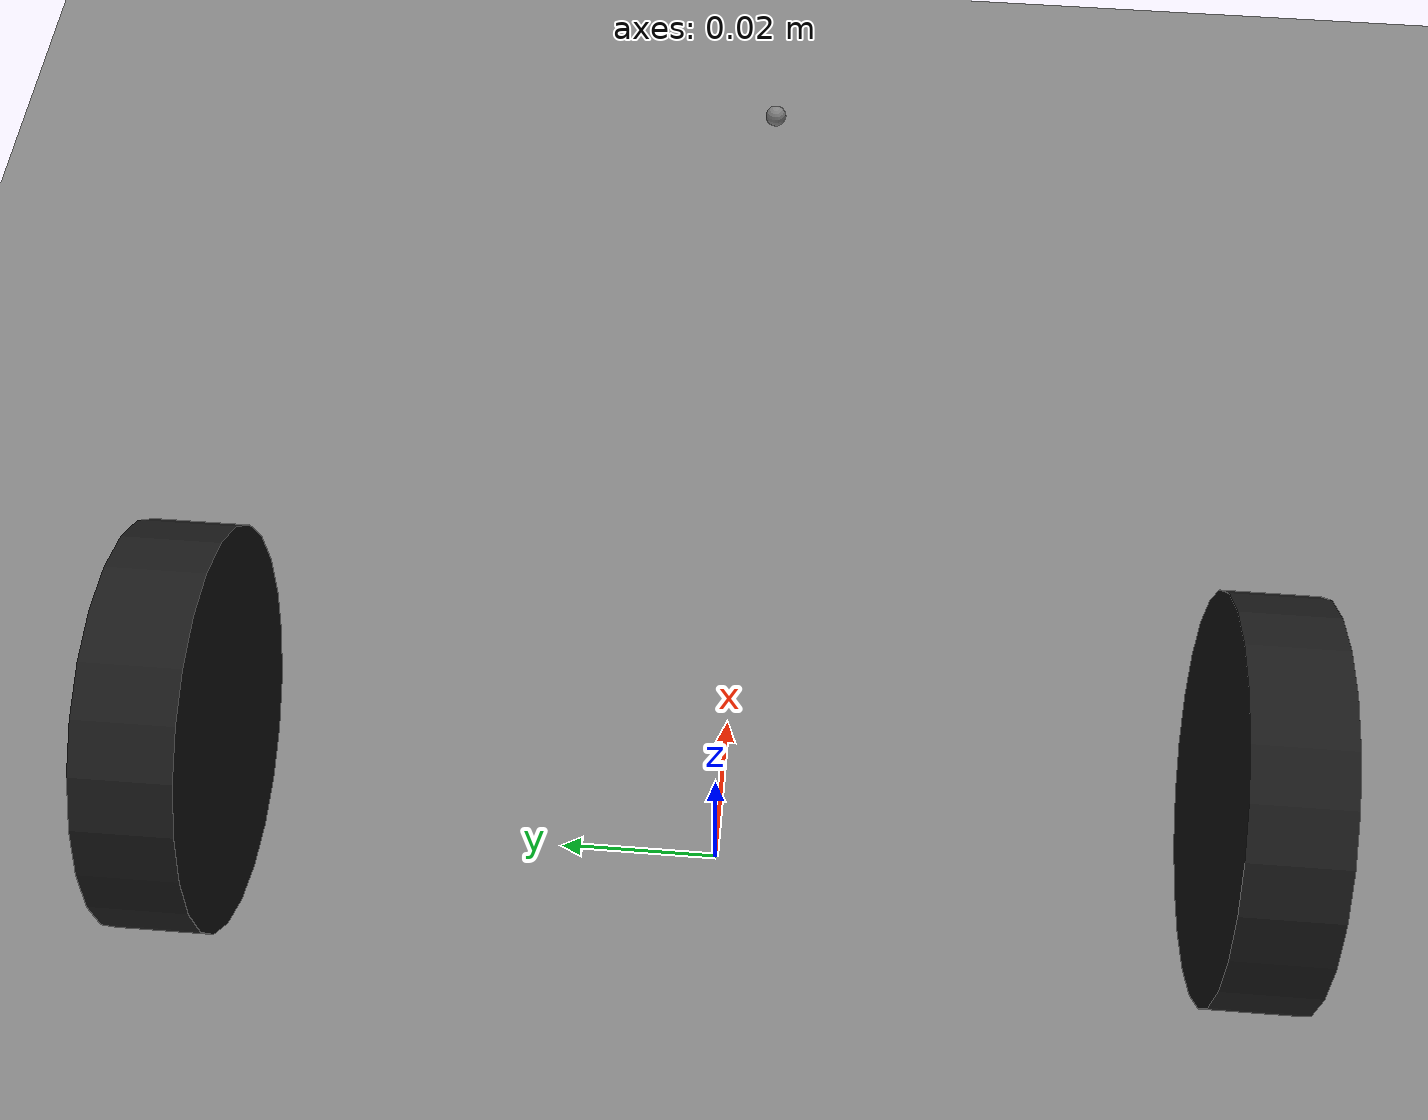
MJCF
<mujoco model="mr_stabs_mk2">
  <compiler angle="radian" autolimits="true"/>
  <option timestep="0.001" integrator="implicitfast" cone="elliptic"/>
  <default>
    <geom solref="0.02 1" solimp="0.9 0.95 0.001 0.5 2"/>
  </default>
  <asset>
    <mesh name="hull_0" file="collision/hull_0.obj"/>
    <mesh name="hull_1" file="collision/hull_1.obj"/>
    <mesh name="hull_2" file="collision/hull_2.obj"/>
    <mesh name="hull_3" file="collision/hull_3.obj"/>
    <mesh name="hull_4" file="collision/hull_4.obj"/>
    <mesh name="hull_5" file="collision/hull_5.obj"/>
    <mesh name="hull_6" file="collision/hull_6.obj"/>
    <mesh name="hull_7" file="collision/hull_7.obj"/>
    <mesh name="hull_8" file="collision/hull_8.obj"/>
    <mesh name="hull_9" file="collision/hull_9.obj"/>
    <mesh name="hull_10" file="collision/hull_10.obj"/>
    <mesh name="hull_11" file="collision/hull_11.obj"/>
    <mesh name="hull_12" file="collision/hull_12.obj"/>
    <mesh name="hull_13" file="collision/hull_13.obj"/>
    <mesh name="hull_14" file="collision/hull_14.obj"/>
    <mesh name="hull_15" file="collision/hull_15.obj"/>
  </asset>
  <worldbody>
    <geom name="floor" type="plane" size="3 3 0.1" contype="1"
          conaffinity="2" friction="0 0 0" condim="1"/>
    <body name="chassis" pos="0 0 0.025">
      <freejoint name="root"/>
      <inertial pos="0.0319413 4.3e-06 0.0008608" mass="0.4590101" fullinertia="0.000779756 0.000548137 0.00125669 4.14461e-08 -2.38195e-06 -9.33042e-08"/>
      <geom name="chassis_hull_0" type="mesh" mesh="hull_0" contype="2" conaffinity="1" condim="3" friction="0.3 0.001 0.0001" group="3"/>
      <geom name="chassis_hull_1" type="mesh" mesh="hull_1" contype="2" conaffinity="1" condim="3" friction="0.3 0.001 0.0001" group="3"/>
      <geom name="chassis_hull_2" type="mesh" mesh="hull_2" contype="2" conaffinity="1" condim="3" friction="0.3 0.001 0.0001" group="3"/>
      <geom name="chassis_hull_3" type="mesh" mesh="hull_3" contype="2" conaffinity="1" condim="3" friction="0.3 0.001 0.0001" group="3"/>
      <geom name="chassis_hull_4" type="mesh" mesh="hull_4" contype="2" conaffinity="1" condim="3" friction="0.3 0.001 0.0001" group="3"/>
      <geom name="chassis_hull_5" type="mesh" mesh="hull_5" contype="2" conaffinity="1" condim="3" friction="0.3 0.001 0.0001" group="3"/>
      <geom name="chassis_hull_6" type="mesh" mesh="hull_6" contype="2" conaffinity="1" condim="3" friction="0.3 0.001 0.0001" group="3"/>
      <geom name="chassis_hull_7" type="mesh" mesh="hull_7" contype="2" conaffinity="1" condim="3" friction="0.3 0.001 0.0001" group="3"/>
      <geom name="chassis_hull_8" type="mesh" mesh="hull_8" contype="2" conaffinity="1" condim="3" friction="0.3 0.001 0.0001" group="3"/>
      <geom name="chassis_hull_9" type="mesh" mesh="hull_9" contype="2" conaffinity="1" condim="3" friction="0.3 0.001 0.0001" group="3"/>
      <geom name="chassis_hull_10" type="mesh" mesh="hull_10" contype="2" conaffinity="1" condim="3" friction="0.3 0.001 0.0001" group="3"/>
      <geom name="chassis_hull_11" type="mesh" mesh="hull_11" contype="2" conaffinity="1" condim="3" friction="0.3 0.001 0.0001" group="3"/>
      <geom name="chassis_hull_12" type="mesh" mesh="hull_12" contype="2" conaffinity="1" condim="3" friction="0.3 0.001 0.0001" group="3"/>
      <geom name="chassis_hull_13" type="mesh" mesh="hull_13" contype="2" conaffinity="1" condim="3" friction="0.3 0.001 0.0001" group="3"/>
      <geom name="chassis_hull_14" type="mesh" mesh="hull_14" contype="2" conaffinity="1" condim="3" friction="0.3 0.001 0.0001" group="3"/>
      <geom name="chassis_hull_15" type="mesh" mesh="hull_15" contype="2" conaffinity="1" condim="3" friction="0.3 0.001 0.0001" group="3"/>
      <geom name="nose_skid" type="sphere" size="0.0015" pos="0.111471 0 -0.001631"
            contype="2" conaffinity="1" condim="4"
            friction="0.3 0.001 0.0001"/>
      <body name="wheel_left" pos="0 0.06526 0">
        <inertial pos="0 0 0" mass="0.0184449" diaginertia="2.33662e-06 4.25282e-06 2.33662e-06"/>
        <joint name="wheel_left" type="hinge" axis="0 1 0" armature="0.0004750068"
               damping="0.0001" frictionloss="0.002"/>
        <geom name="wheel_left_tread" type="cylinder" size="0.025 0.006"
              zaxis="0 1 0" contype="2" conaffinity="1" condim="6"
              friction="1 0.005 0.0001" rgba="0.1 0.1 0.1 1"/>
      </body>
      <body name="wheel_right" pos="0 -0.06526 0">
        <inertial pos="0 0 0" mass="0.0184449" diaginertia="2.336615e-06 4.25282e-06 2.336615e-06"/>
        <joint name="wheel_right" type="hinge" axis="0 1 0" armature="0.0004750068"
               damping="0.0001" frictionloss="0.002"/>
        <geom name="wheel_right_tread" type="cylinder" size="0.025 0.006"
              zaxis="0 1 0" contype="2" conaffinity="1" condim="6"
              friction="1 0.005 0.0001" rgba="0.1 0.1 0.1 1"/>
      </body>
    </body>
  </worldbody>
  <actuator>
    <general name="motor_left" joint="wheel_left" gainprm="0.37533176"
             biasprm="0 0 -0.0352184825" ctrlrange="-30 30" forcerange="-2.62732232 2.62732232"/>
    <general name="motor_right" joint="wheel_right" gainprm="0.37533176"
             biasprm="0 0 -0.0352184825" ctrlrange="-30 30" forcerange="-2.62732232 2.62732232"/>
  </actuator>
</mujoco>
